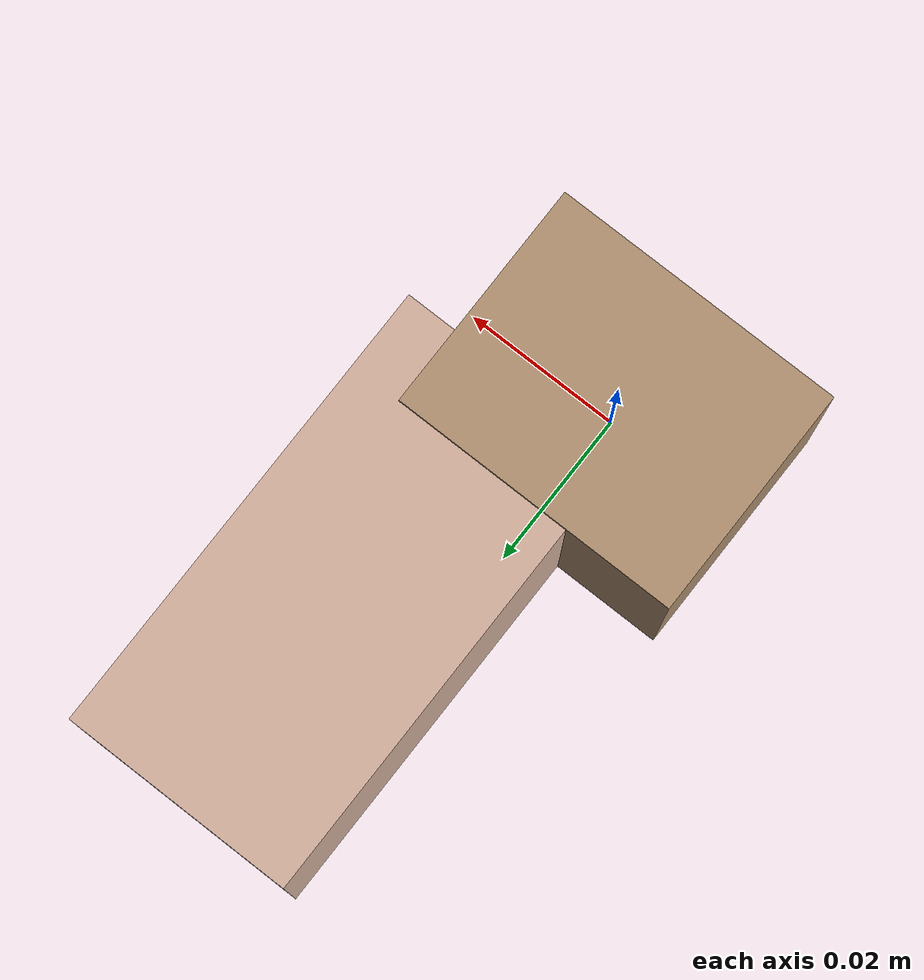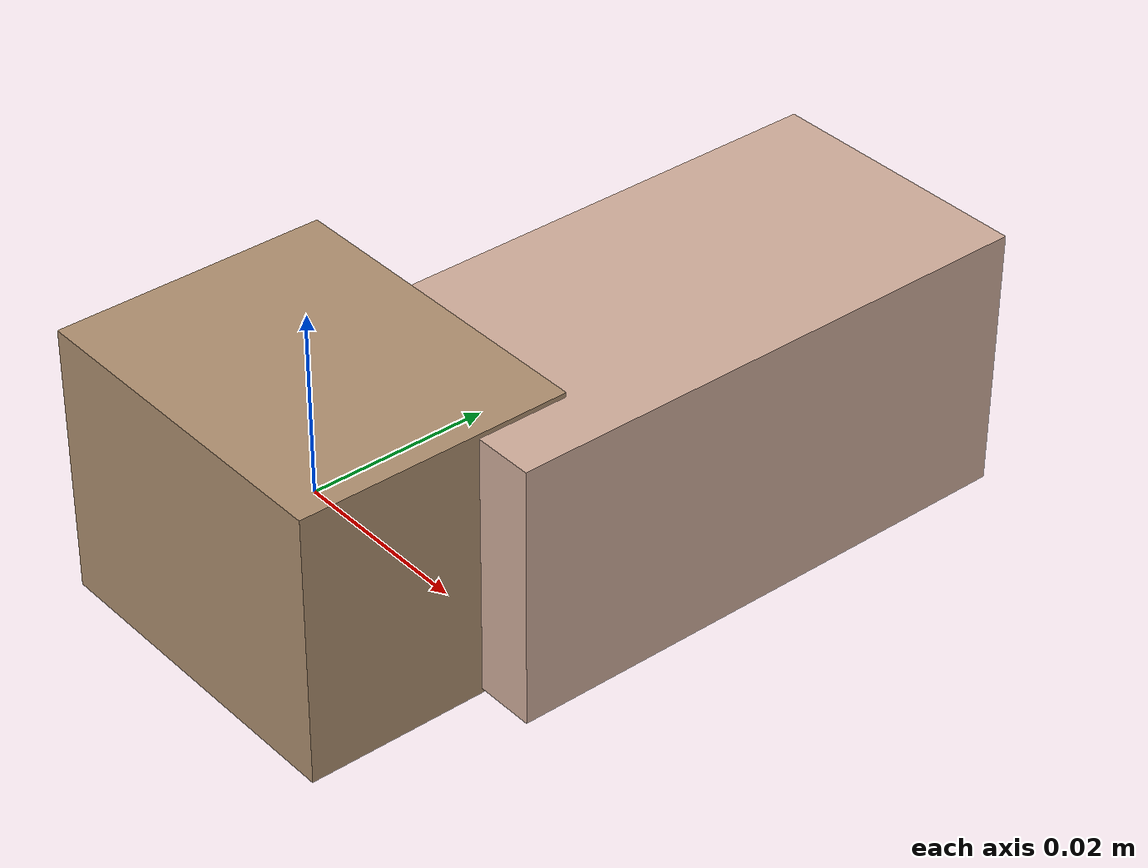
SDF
<sdf version="1.4"><world name="default"><model name="object0"><link name="link1"><pose>0 0 0 0 0 0</pose><inertial><pose>0 0 0 0 0 0</pose><mass>0.020395078239276346</mass><inertia><ixx>3.0592617358914517e-06</ixx><ixy>0</ixy><iyy>3.954048095467646e-06</iyy><ixz>0</ixz><iyz>0</iyz><izz>3.954048095467646e-06</izz></inertia></inertial><visual name="link1_visual"><pose>0 0  0 0 0 0</pose><geometry><box><size>0.03776866340606731 0.03 0.03</size></box></geometry><material><diffuse>0.6820698544518045 0.5617714273536434 0.43708112789175835 1</diffuse></material></visual><collision><pose>0 0  0 0 0 0</pose><geometry><box><size>0.03776866340606731 0.03 0.03</size></box></geometry></collision></link><link name="link2"><pose>0.01043783909681495 0.03494999455757813 0 0 0 0</pose><inertial><pose>0 0 0 0 0 0</pose><mass>0.032503219902750916</mass><inertia><ixx>1.2091128175730554e-05</ixx><ixy>0</ixy><iyy>4.715675487557445e-06</iyy><ixz>0</ixz><iyz>0</iyz><izz>1.2250935673585747e-05</izz></inertia></inertial><visual name="link2_visual"><pose>0 0  0 0 0 0</pose><geometry><box><size>0.03 0.06019114796805726 0.028999999999999998</size></box></geometry><material><diffuse>0.8170838615864435 0.6798416227749886 0.610280255831928 1</diffuse></material></visual><collision><pose>0 0  0 0 0 0</pose><geometry><box><size>0.03 0.06019114796805726 0.028999999999999998</size></box></geometry></collision></link><joint name="link_joint_0" type="fixed"><parent>link1</parent><child>link2</child><pose>0 0 0 0 0 0</pose><axis><xyz>0 0 1</xyz></axis></joint></model></world></sdf>
